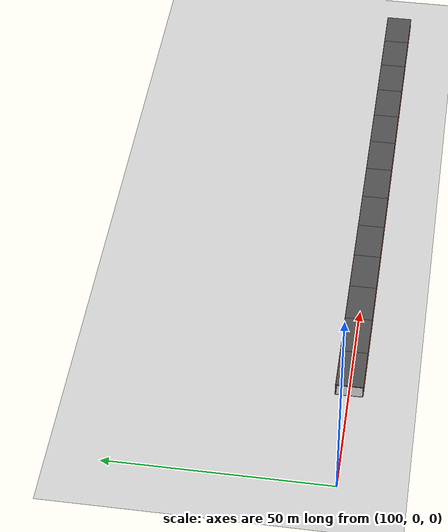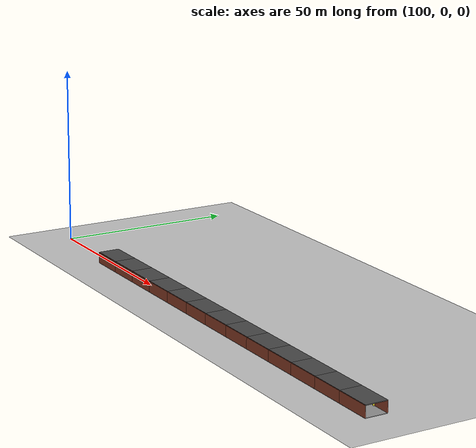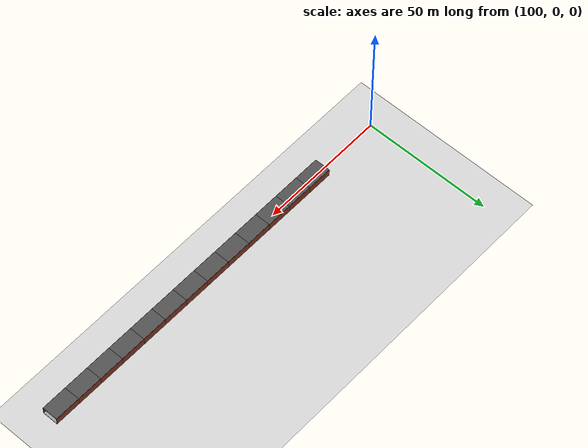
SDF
<sdf version="1.6">
 <world name="tunnel_innovation">
  <include><uri>model://ground_plane</uri></include>
  <model name="segment_13">
   <static>true</static>
   <pose>130 0 0 0 0 0</pose>
   <link name="link">
    <collision name="floor"><geometry><box><size>10 6 0.2</size></box></geometry></collision>
    <visual name="floor">
     <pose>0 0 -0.1 0 0 0</pose>
     <geometry><box><size>10 6 0.2</size></box></geometry>
     <material>
      <script><uri>file://media/materials/scripts/gazebo.material</uri><name>Gazebo/Grey</name></script>
     </material>
    </visual>
    <visual name="roof">
     <pose>0 0 3.0 0 0 0</pose>
     <geometry><box><size>10 6 0.2</size></box></geometry>
     <material>
      <script><uri>file://media/materials/scripts/gazebo.material</uri><name>Gazebo/DarkGrey</name></script>
     </material>
    </visual>
    <visual name="wall_l">
     <pose>0 3 1.5 0 0 0</pose>
     <geometry><box><size>10 0.2 3</size></box></geometry>
     <material>
      <script><uri>file://media/materials/scripts/gazebo.material</uri><name>Gazebo/Bricks</name></script>
     </material>
    </visual>
    <visual name="wall_r">
     <pose>0 -3 1.5 0 0 0</pose>
     <geometry><box><size>10 0.2 3</size></box></geometry>
     <material>
      <script><uri>file://media/materials/scripts/gazebo.material</uri><name>Gazebo/Bricks</name></script>
     </material>
    </visual>
    <visual name="pillar_l">
     <pose>0 2.8 1.5 0 0 0</pose>
     <geometry><cylinder><radius>0.2</radius><length>3</length></cylinder></geometry>
     <material>
      <script><uri>file://media/materials/scripts/gazebo.material</uri><name>Gazebo/Yellow</name></script>
     </material>
    </visual>
    <visual name="pillar_r">
     <pose>0 -2.8 1.5 0 0 0</pose>
     <geometry><cylinder><radius>0.2</radius><length>3</length></cylinder></geometry>
     <material>
      <script><uri>file://media/materials/scripts/gazebo.material</uri><name>Gazebo/Red</name></script>
     </material>
    </visual>
   </link>
  </model>
  <model name="segment_14">
   <static>true</static>
   <pose>140 0 0 0 0 0</pose>
   <link name="link">
    <collision name="floor"><geometry><box><size>10 6 0.2</size></box></geometry></collision>
    <visual name="floor">
     <pose>0 0 -0.1 0 0 0</pose>
     <geometry><box><size>10 6 0.2</size></box></geometry>
     <material>
      <script><uri>file://media/materials/scripts/gazebo.material</uri><name>Gazebo/Grey</name></script>
     </material>
    </visual>
    <visual name="roof">
     <pose>0 0 3.0 0 0 0</pose>
     <geometry><box><size>10 6 0.2</size></box></geometry>
     <material>
      <script><uri>file://media/materials/scripts/gazebo.material</uri><name>Gazebo/DarkGrey</name></script>
     </material>
    </visual>
    <visual name="wall_l">
     <pose>0 3 1.5 0 0 0</pose>
     <geometry><box><size>10 0.2 3</size></box></geometry>
     <material>
      <script><uri>file://media/materials/scripts/gazebo.material</uri><name>Gazebo/Bricks</name></script>
     </material>
    </visual>
    <visual name="wall_r">
     <pose>0 -3 1.5 0 0 0</pose>
     <geometry><box><size>10 0.2 3</size></box></geometry>
     <material>
      <script><uri>file://media/materials/scripts/gazebo.material</uri><name>Gazebo/Bricks</name></script>
     </material>
    </visual>
    <visual name="pillar_l">
     <pose>0 2.8 1.5 0 0 0</pose>
     <geometry><cylinder><radius>0.2</radius><length>3</length></cylinder></geometry>
     <material>
      <script><uri>file://media/materials/scripts/gazebo.material</uri><name>Gazebo/Yellow</name></script>
     </material>
    </visual>
    <visual name="pillar_r">
     <pose>0 -2.8 1.5 0 0 0</pose>
     <geometry><cylinder><radius>0.2</radius><length>3</length></cylinder></geometry>
     <material>
      <script><uri>file://media/materials/scripts/gazebo.material</uri><name>Gazebo/Yellow</name></script>
     </material>
    </visual>
   </link>
  </model>
  <model name="segment_15">
   <static>true</static>
   <pose>150 0 0 0 0 0</pose>
   <link name="link">
    <collision name="floor"><geometry><box><size>10 6 0.2</size></box></geometry></collision>
    <visual name="floor">
     <pose>0 0 -0.1 0 0 0</pose>
     <geometry><box><size>10 6 0.2</size></box></geometry>
     <material>
      <script><uri>file://media/materials/scripts/gazebo.material</uri><name>Gazebo/Grey</name></script>
     </material>
    </visual>
    <visual name="roof">
     <pose>0 0 3.0 0 0 0</pose>
     <geometry><box><size>10 6 0.2</size></box></geometry>
     <material>
      <script><uri>file://media/materials/scripts/gazebo.material</uri><name>Gazebo/DarkGrey</name></script>
     </material>
    </visual>
    <visual name="wall_l">
     <pose>0 3 1.5 0 0 0</pose>
     <geometry><box><size>10 0.2 3</size></box></geometry>
     <material>
      <script><uri>file://media/materials/scripts/gazebo.material</uri><name>Gazebo/Bricks</name></script>
     </material>
    </visual>
    <visual name="wall_r">
     <pose>0 -3 1.5 0 0 0</pose>
     <geometry><box><size>10 0.2 3</size></box></geometry>
     <material>
      <script><uri>file://media/materials/scripts/gazebo.material</uri><name>Gazebo/Bricks</name></script>
     </material>
    </visual>
    <visual name="pillar_l">
     <pose>0 2.8 1.5 0 0 0</pose>
     <geometry><cylinder><radius>0.2</radius><length>3</length></cylinder></geometry>
     <material>
      <script><uri>file://media/materials/scripts/gazebo.material</uri><name>Gazebo/Yellow</name></script>
     </material>
    </visual>
    <visual name="pillar_r">
     <pose>0 -2.8 1.5 0 0 0</pose>
     <geometry><cylinder><radius>0.2</radius><length>3</length></cylinder></geometry>
     <material>
      <script><uri>file://media/materials/scripts/gazebo.material</uri><name>Gazebo/Red</name></script>
     </material>
    </visual>
   </link>
  </model>
  <model name="segment_16">
   <static>true</static>
   <pose>160 0 0 0 0 0</pose>
   <link name="link">
    <collision name="floor"><geometry><box><size>10 6 0.2</size></box></geometry></collision>
    <visual name="floor">
     <pose>0 0 -0.1 0 0 0</pose>
     <geometry><box><size>10 6 0.2</size></box></geometry>
     <material>
      <script><uri>file://media/materials/scripts/gazebo.material</uri><name>Gazebo/Grey</name></script>
     </material>
    </visual>
    <visual name="roof">
     <pose>0 0 3.0 0 0 0</pose>
     <geometry><box><size>10 6 0.2</size></box></geometry>
     <material>
      <script><uri>file://media/materials/scripts/gazebo.material</uri><name>Gazebo/DarkGrey</name></script>
     </material>
    </visual>
    <visual name="wall_l">
     <pose>0 3 1.5 0 0 0</pose>
     <geometry><box><size>10 0.2 3</size></box></geometry>
     <material>
      <script><uri>file://media/materials/scripts/gazebo.material</uri><name>Gazebo/Bricks</name></script>
     </material>
    </visual>
    <visual name="wall_r">
     <pose>0 -3 1.5 0 0 0</pose>
     <geometry><box><size>10 0.2 3</size></box></geometry>
     <material>
      <script><uri>file://media/materials/scripts/gazebo.material</uri><name>Gazebo/Bricks</name></script>
     </material>
    </visual>
    <visual name="pillar_l">
     <pose>0 2.8 1.5 0 0 0</pose>
     <geometry><cylinder><radius>0.2</radius><length>3</length></cylinder></geometry>
     <material>
      <script><uri>file://media/materials/scripts/gazebo.material</uri><name>Gazebo/Yellow</name></script>
     </material>
    </visual>
    <visual name="pillar_r">
     <pose>0 -2.8 1.5 0 0 0</pose>
     <geometry><cylinder><radius>0.2</radius><length>3</length></cylinder></geometry>
     <material>
      <script><uri>file://media/materials/scripts/gazebo.material</uri><name>Gazebo/Yellow</name></script>
     </material>
    </visual>
   </link>
  </model>
  <model name="segment_17">
   <static>true</static>
   <pose>170 0 0 0 0 0</pose>
   <link name="link">
    <collision name="floor"><geometry><box><size>10 6 0.2</size></box></geometry></collision>
    <visual name="floor">
     <pose>0 0 -0.1 0 0 0</pose>
     <geometry><box><size>10 6 0.2</size></box></geometry>
     <material>
      <script><uri>file://media/materials/scripts/gazebo.material</uri><name>Gazebo/Grey</name></script>
     </material>
    </visual>
    <visual name="roof">
     <pose>0 0 3.0 0 0 0</pose>
     <geometry><box><size>10 6 0.2</size></box></geometry>
     <material>
      <script><uri>file://media/materials/scripts/gazebo.material</uri><name>Gazebo/DarkGrey</name></script>
     </material>
    </visual>
    <visual name="wall_l">
     <pose>0 3 1.5 0 0 0</pose>
     <geometry><box><size>10 0.2 3</size></box></geometry>
     <material>
      <script><uri>file://media/materials/scripts/gazebo.material</uri><name>Gazebo/Bricks</name></script>
     </material>
    </visual>
    <visual name="wall_r">
     <pose>0 -3 1.5 0 0 0</pose>
     <geometry><box><size>10 0.2 3</size></box></geometry>
     <material>
      <script><uri>file://media/materials/scripts/gazebo.material</uri><name>Gazebo/Bricks</name></script>
     </material>
    </visual>
    <visual name="pillar_l">
     <pose>0 2.8 1.5 0 0 0</pose>
     <geometry><cylinder><radius>0.2</radius><length>3</length></cylinder></geometry>
     <material>
      <script><uri>file://media/materials/scripts/gazebo.material</uri><name>Gazebo/Yellow</name></script>
     </material>
    </visual>
    <visual name="pillar_r">
     <pose>0 -2.8 1.5 0 0 0</pose>
     <geometry><cylinder><radius>0.2</radius><length>3</length></cylinder></geometry>
     <material>
      <script><uri>file://media/materials/scripts/gazebo.material</uri><name>Gazebo/Red</name></script>
     </material>
    </visual>
   </link>
  </model>
  <model name="segment_18">
   <static>true</static>
   <pose>180 0 0 0 0 0</pose>
   <link name="link">
    <collision name="floor"><geometry><box><size>10 6 0.2</size></box></geometry></collision>
    <visual name="floor">
     <pose>0 0 -0.1 0 0 0</pose>
     <geometry><box><size>10 6 0.2</size></box></geometry>
     <material>
      <script><uri>file://media/materials/scripts/gazebo.material</uri><name>Gazebo/Grey</name></script>
     </material>
    </visual>
    <visual name="roof">
     <pose>0 0 3.0 0 0 0</pose>
     <geometry><box><size>10 6 0.2</size></box></geometry>
     <material>
      <script><uri>file://media/materials/scripts/gazebo.material</uri><name>Gazebo/DarkGrey</name></script>
     </material>
    </visual>
    <visual name="wall_l">
     <pose>0 3 1.5 0 0 0</pose>
     <geometry><box><size>10 0.2 3</size></box></geometry>
     <material>
      <script><uri>file://media/materials/scripts/gazebo.material</uri><name>Gazebo/Bricks</name></script>
     </material>
    </visual>
    <visual name="wall_r">
     <pose>0 -3 1.5 0 0 0</pose>
     <geometry><box><size>10 0.2 3</size></box></geometry>
     <material>
      <script><uri>file://media/materials/scripts/gazebo.material</uri><name>Gazebo/Bricks</name></script>
     </material>
    </visual>
    <visual name="pillar_l">
     <pose>0 2.8 1.5 0 0 0</pose>
     <geometry><cylinder><radius>0.2</radius><length>3</length></cylinder></geometry>
     <material>
      <script><uri>file://media/materials/scripts/gazebo.material</uri><name>Gazebo/Yellow</name></script>
     </material>
    </visual>
    <visual name="pillar_r">
     <pose>0 -2.8 1.5 0 0 0</pose>
     <geometry><cylinder><radius>0.2</radius><length>3</length></cylinder></geometry>
     <material>
      <script><uri>file://media/materials/scripts/gazebo.material</uri><name>Gazebo/Yellow</name></script>
     </material>
    </visual>
   </link>
  </model>
  <model name="segment_19">
   <static>true</static>
   <pose>190 0 0 0 0 0</pose>
   <link name="link">
    <collision name="floor"><geometry><box><size>10 6 0.2</size></box></geometry></collision>
    <visual name="floor">
     <pose>0 0 -0.1 0 0 0</pose>
     <geometry><box><size>10 6 0.2</size></box></geometry>
     <material>
      <script><uri>file://media/materials/scripts/gazebo.material</uri><name>Gazebo/Grey</name></script>
     </material>
    </visual>
    <visual name="roof">
     <pose>0 0 3.0 0 0 0</pose>
     <geometry><box><size>10 6 0.2</size></box></geometry>
     <material>
      <script><uri>file://media/materials/scripts/gazebo.material</uri><name>Gazebo/DarkGrey</name></script>
     </material>
    </visual>
    <visual name="wall_l">
     <pose>0 3 1.5 0 0 0</pose>
     <geometry><box><size>10 0.2 3</size></box></geometry>
     <material>
      <script><uri>file://media/materials/scripts/gazebo.material</uri><name>Gazebo/Bricks</name></script>
     </material>
    </visual>
    <visual name="wall_r">
     <pose>0 -3 1.5 0 0 0</pose>
     <geometry><box><size>10 0.2 3</size></box></geometry>
     <material>
      <script><uri>file://media/materials/scripts/gazebo.material</uri><name>Gazebo/Bricks</name></script>
     </material>
    </visual>
    <visual name="pillar_l">
     <pose>0 2.8 1.5 0 0 0</pose>
     <geometry><cylinder><radius>0.2</radius><length>3</length></cylinder></geometry>
     <material>
      <script><uri>file://media/materials/scripts/gazebo.material</uri><name>Gazebo/Yellow</name></script>
     </material>
    </visual>
    <visual name="pillar_r">
     <pose>0 -2.8 1.5 0 0 0</pose>
     <geometry><cylinder><radius>0.2</radius><length>3</length></cylinder></geometry>
     <material>
      <script><uri>file://media/materials/scripts/gazebo.material</uri><name>Gazebo/Red</name></script>
     </material>
    </visual>
   </link>
  </model>
  <model name="segment_20">
   <static>true</static>
   <pose>200 0 0 0 0 0</pose>
   <link name="link">
    <collision name="floor"><geometry><box><size>10 6 0.2</size></box></geometry></collision>
    <visual name="floor">
     <pose>0 0 -0.1 0 0 0</pose>
     <geometry><box><size>10 6 0.2</size></box></geometry>
     <material>
      <script><uri>file://media/materials/scripts/gazebo.material</uri><name>Gazebo/Grey</name></script>
     </material>
    </visual>
    <visual name="roof">
     <pose>0 0 3.0 0 0 0</pose>
     <geometry><box><size>10 6 0.2</size></box></geometry>
     <material>
      <script><uri>file://media/materials/scripts/gazebo.material</uri><name>Gazebo/DarkGrey</name></script>
     </material>
    </visual>
    <visual name="wall_l">
     <pose>0 3 1.5 0 0 0</pose>
     <geometry><box><size>10 0.2 3</size></box></geometry>
     <material>
      <script><uri>file://media/materials/scripts/gazebo.material</uri><name>Gazebo/Bricks</name></script>
     </material>
    </visual>
    <visual name="wall_r">
     <pose>0 -3 1.5 0 0 0</pose>
     <geometry><box><size>10 0.2 3</size></box></geometry>
     <material>
      <script><uri>file://media/materials/scripts/gazebo.material</uri><name>Gazebo/Bricks</name></script>
     </material>
    </visual>
    <visual name="pillar_l">
     <pose>0 2.8 1.5 0 0 0</pose>
     <geometry><cylinder><radius>0.2</radius><length>3</length></cylinder></geometry>
     <material>
      <script><uri>file://media/materials/scripts/gazebo.material</uri><name>Gazebo/Yellow</name></script>
     </material>
    </visual>
    <visual name="pillar_r">
     <pose>0 -2.8 1.5 0 0 0</pose>
     <geometry><cylinder><radius>0.2</radius><length>3</length></cylinder></geometry>
     <material>
      <script><uri>file://media/materials/scripts/gazebo.material</uri><name>Gazebo/Yellow</name></script>
     </material>
    </visual>
   </link>
  </model>
  <model name="segment_21">
   <static>true</static>
   <pose>210 0 0 0 0 0</pose>
   <link name="link">
    <collision name="floor"><geometry><box><size>10 6 0.2</size></box></geometry></collision>
    <visual name="floor">
     <pose>0 0 -0.1 0 0 0</pose>
     <geometry><box><size>10 6 0.2</size></box></geometry>
     <material>
      <script><uri>file://media/materials/scripts/gazebo.material</uri><name>Gazebo/Grey</name></script>
     </material>
    </visual>
    <visual name="roof">
     <pose>0 0 3.0 0 0 0</pose>
     <geometry><box><size>10 6 0.2</size></box></geometry>
     <material>
      <script><uri>file://media/materials/scripts/gazebo.material</uri><name>Gazebo/DarkGrey</name></script>
     </material>
    </visual>
    <visual name="wall_l">
     <pose>0 3 1.5 0 0 0</pose>
     <geometry><box><size>10 0.2 3</size></box></geometry>
     <material>
      <script><uri>file://media/materials/scripts/gazebo.material</uri><name>Gazebo/Bricks</name></script>
     </material>
    </visual>
    <visual name="wall_r">
     <pose>0 -3 1.5 0 0 0</pose>
     <geometry><box><size>10 0.2 3</size></box></geometry>
     <material>
      <script><uri>file://media/materials/scripts/gazebo.material</uri><name>Gazebo/Bricks</name></script>
     </material>
    </visual>
    <visual name="pillar_l">
     <pose>0 2.8 1.5 0 0 0</pose>
     <geometry><cylinder><radius>0.2</radius><length>3</length></cylinder></geometry>
     <material>
      <script><uri>file://media/materials/scripts/gazebo.material</uri><name>Gazebo/Yellow</name></script>
     </material>
    </visual>
    <visual name="pillar_r">
     <pose>0 -2.8 1.5 0 0 0</pose>
     <geometry><cylinder><radius>0.2</radius><length>3</length></cylinder></geometry>
     <material>
      <script><uri>file://media/materials/scripts/gazebo.material</uri><name>Gazebo/Red</name></script>
     </material>
    </visual>
   </link>
  </model>
  <model name="segment_22">
   <static>true</static>
   <pose>220 0 0 0 0 0</pose>
   <link name="link">
    <collision name="floor"><geometry><box><size>10 6 0.2</size></box></geometry></collision>
    <visual name="floor">
     <pose>0 0 -0.1 0 0 0</pose>
     <geometry><box><size>10 6 0.2</size></box></geometry>
     <material>
      <script><uri>file://media/materials/scripts/gazebo.material</uri><name>Gazebo/Grey</name></script>
     </material>
    </visual>
    <visual name="roof">
     <pose>0 0 3.0 0 0 0</pose>
     <geometry><box><size>10 6 0.2</size></box></geometry>
     <material>
      <script><uri>file://media/materials/scripts/gazebo.material</uri><name>Gazebo/DarkGrey</name></script>
     </material>
    </visual>
    <visual name="wall_l">
     <pose>0 3 1.5 0 0 0</pose>
     <geometry><box><size>10 0.2 3</size></box></geometry>
     <material>
      <script><uri>file://media/materials/scripts/gazebo.material</uri><name>Gazebo/Bricks</name></script>
     </material>
    </visual>
    <visual name="wall_r">
     <pose>0 -3 1.5 0 0 0</pose>
     <geometry><box><size>10 0.2 3</size></box></geometry>
     <material>
      <script><uri>file://media/materials/scripts/gazebo.material</uri><name>Gazebo/Bricks</name></script>
     </material>
    </visual>
    <visual name="pillar_l">
     <pose>0 2.8 1.5 0 0 0</pose>
     <geometry><cylinder><radius>0.2</radius><length>3</length></cylinder></geometry>
     <material>
      <script><uri>file://media/materials/scripts/gazebo.material</uri><name>Gazebo/Yellow</name></script>
     </material>
    </visual>
    <visual name="pillar_r">
     <pose>0 -2.8 1.5 0 0 0</pose>
     <geometry><cylinder><radius>0.2</radius><length>3</length></cylinder></geometry>
     <material>
      <script><uri>file://media/materials/scripts/gazebo.material</uri><name>Gazebo/Yellow</name></script>
     </material>
    </visual>
   </link>
  </model>
  <model name="segment_23">
   <static>true</static>
   <pose>230 0 0 0 0 0</pose>
   <link name="link">
    <collision name="floor"><geometry><box><size>10 6 0.2</size></box></geometry></collision>
    <visual name="floor">
     <pose>0 0 -0.1 0 0 0</pose>
     <geometry><box><size>10 6 0.2</size></box></geometry>
     <material>
      <script><uri>file://media/materials/scripts/gazebo.material</uri><name>Gazebo/Grey</name></script>
     </material>
    </visual>
    <visual name="roof">
     <pose>0 0 3.0 0 0 0</pose>
     <geometry><box><size>10 6 0.2</size></box></geometry>
     <material>
      <script><uri>file://media/materials/scripts/gazebo.material</uri><name>Gazebo/DarkGrey</name></script>
     </material>
    </visual>
    <visual name="wall_l">
     <pose>0 3 1.5 0 0 0</pose>
     <geometry><box><size>10 0.2 3</size></box></geometry>
     <material>
      <script><uri>file://media/materials/scripts/gazebo.material</uri><name>Gazebo/Bricks</name></script>
     </material>
    </visual>
    <visual name="wall_r">
     <pose>0 -3 1.5 0 0 0</pose>
     <geometry><box><size>10 0.2 3</size></box></geometry>
     <material>
      <script><uri>file://media/materials/scripts/gazebo.material</uri><name>Gazebo/Bricks</name></script>
     </material>
    </visual>
    <visual name="pillar_l">
     <pose>0 2.8 1.5 0 0 0</pose>
     <geometry><cylinder><radius>0.2</radius><length>3</length></cylinder></geometry>
     <material>
      <script><uri>file://media/materials/scripts/gazebo.material</uri><name>Gazebo/Yellow</name></script>
     </material>
    </visual>
    <visual name="pillar_r">
     <pose>0 -2.8 1.5 0 0 0</pose>
     <geometry><cylinder><radius>0.2</radius><length>3</length></cylinder></geometry>
     <material>
      <script><uri>file://media/materials/scripts/gazebo.material</uri><name>Gazebo/Red</name></script>
     </material>
    </visual>
   </link>
  </model>
  <model name="segment_24">
   <static>true</static>
   <pose>240 0 0 0 0 0</pose>
   <link name="link">
    <collision name="floor"><geometry><box><size>10 6 0.2</size></box></geometry></collision>
    <visual name="floor">
     <pose>0 0 -0.1 0 0 0</pose>
     <geometry><box><size>10 6 0.2</size></box></geometry>
     <material>
      <script><uri>file://media/materials/scripts/gazebo.material</uri><name>Gazebo/Grey</name></script>
     </material>
    </visual>
    <visual name="roof">
     <pose>0 0 3.0 0 0 0</pose>
     <geometry><box><size>10 6 0.2</size></box></geometry>
     <material>
      <script><uri>file://media/materials/scripts/gazebo.material</uri><name>Gazebo/DarkGrey</name></script>
     </material>
    </visual>
    <visual name="wall_l">
     <pose>0 3 1.5 0 0 0</pose>
     <geometry><box><size>10 0.2 3</size></box></geometry>
     <material>
      <script><uri>file://media/materials/scripts/gazebo.material</uri><name>Gazebo/Bricks</name></script>
     </material>
    </visual>
    <visual name="wall_r">
     <pose>0 -3 1.5 0 0 0</pose>
     <geometry><box><size>10 0.2 3</size></box></geometry>
     <material>
      <script><uri>file://media/materials/scripts/gazebo.material</uri><name>Gazebo/Bricks</name></script>
     </material>
    </visual>
    <visual name="pillar_l">
     <pose>0 2.8 1.5 0 0 0</pose>
     <geometry><cylinder><radius>0.2</radius><length>3</length></cylinder></geometry>
     <material>
      <script><uri>file://media/materials/scripts/gazebo.material</uri><name>Gazebo/Yellow</name></script>
     </material>
    </visual>
    <visual name="pillar_r">
     <pose>0 -2.8 1.5 0 0 0</pose>
     <geometry><cylinder><radius>0.2</radius><length>3</length></cylinder></geometry>
     <material>
      <script><uri>file://media/materials/scripts/gazebo.material</uri><name>Gazebo/Yellow</name></script>
     </material>
    </visual>
   </link>
  </model>
  <model name="segment_25">
   <static>true</static>
   <pose>250 0 0 0 0 0</pose>
   <link name="link">
    <collision name="floor"><geometry><box><size>10 6 0.2</size></box></geometry></collision>
    <visual name="floor">
     <pose>0 0 -0.1 0 0 0</pose>
     <geometry><box><size>10 6 0.2</size></box></geometry>
     <material>
      <script><uri>file://media/materials/scripts/gazebo.material</uri><name>Gazebo/Grey</name></script>
     </material>
    </visual>
    <visual name="roof">
     <pose>0 0 3.0 0 0 0</pose>
     <geometry><box><size>10 6 0.2</size></box></geometry>
     <material>
      <script><uri>file://media/materials/scripts/gazebo.material</uri><name>Gazebo/DarkGrey</name></script>
     </material>
    </visual>
    <visual name="wall_l">
     <pose>0 3 1.5 0 0 0</pose>
     <geometry><box><size>10 0.2 3</size></box></geometry>
     <material>
      <script><uri>file://media/materials/scripts/gazebo.material</uri><name>Gazebo/Bricks</name></script>
     </material>
    </visual>
    <visual name="wall_r">
     <pose>0 -3 1.5 0 0 0</pose>
     <geometry><box><size>10 0.2 3</size></box></geometry>
     <material>
      <script><uri>file://media/materials/scripts/gazebo.material</uri><name>Gazebo/Bricks</name></script>
     </material>
    </visual>
    <visual name="pillar_l">
     <pose>0 2.8 1.5 0 0 0</pose>
     <geometry><cylinder><radius>0.2</radius><length>3</length></cylinder></geometry>
     <material>
      <script><uri>file://media/materials/scripts/gazebo.material</uri><name>Gazebo/Yellow</name></script>
     </material>
    </visual>
    <visual name="pillar_r">
     <pose>0 -2.8 1.5 0 0 0</pose>
     <geometry><cylinder><radius>0.2</radius><length>3</length></cylinder></geometry>
     <material>
      <script><uri>file://media/materials/scripts/gazebo.material</uri><name>Gazebo/Red</name></script>
     </material>
    </visual>
   </link>
  </model>
 </world>
</sdf>
